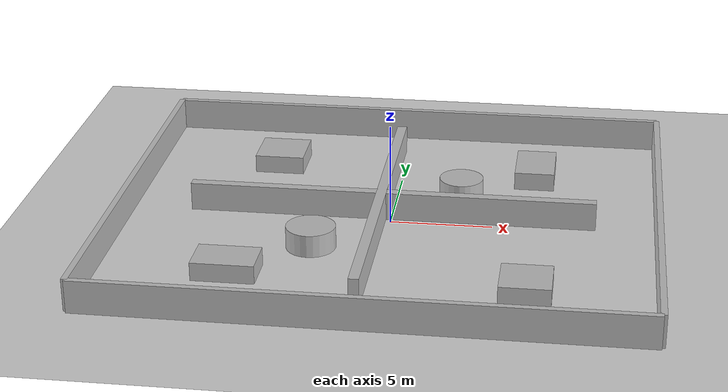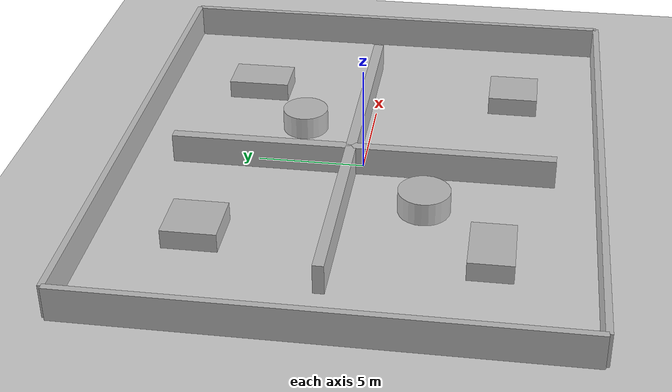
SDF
<?xml version="1.0" ?>
<sdf version="1.6">
  <world name="island_crossroads">
    <include><uri>model://ground_plane</uri></include>
    <include><uri>model://sun</uri></include>

    <model name="perimeter_and_cross">
      <static>true</static>
      <link name="pc">
        <collision name="pn"><pose>0 11 0.8 0 0 0</pose><geometry><box><size>26 0.3 1.6</size></box></geometry></collision>
        <collision name="ps"><pose>0 -11 0.8 0 0 0</pose><geometry><box><size>26 0.3 1.6</size></box></geometry></collision>
        <collision name="pe"><pose>13 0 0.8 0 0 0</pose><geometry><box><size>0.3 22 1.6</size></box></geometry></collision>
        <collision name="pw"><pose>-13 0 0.8 0 0 0</pose><geometry><box><size>0.3 22 1.6</size></box></geometry></collision>

        <collision name="cross_h"><pose>0 0.5 0.7 0 0 0</pose><geometry><box><size>20 0.5 1.4</size></box></geometry></collision>
        <collision name="cross_v"><pose>-0.5 0 0.7 0 0 0</pose><geometry><box><size>0.5 18 1.4</size></box></geometry></collision>

        <visual name="pnv"><pose>0 11 0.8 0 0 0</pose><geometry><box><size>26 0.3 1.6</size></box></geometry></visual>
        <visual name="psv"><pose>0 -11 0.8 0 0 0</pose><geometry><box><size>26 0.3 1.6</size></box></geometry></visual>
        <visual name="pev"><pose>13 0 0.8 0 0 0</pose><geometry><box><size>0.3 22 1.6</size></box></geometry></visual>
        <visual name="pwv"><pose>-13 0 0.8 0 0 0</pose><geometry><box><size>0.3 22 1.6</size></box></geometry></visual>
        <visual name="cross_h_v"><pose>0 0.5 0.7 0 0 0</pose><geometry><box><size>20 0.5 1.4</size></box></geometry></visual>
        <visual name="cross_v_v"><pose>-0.5 0 0.7 0 0 0</pose><geometry><box><size>0.5 18 1.4</size></box></geometry></visual>
      </link>
    </model>

    <model name="islands">
      <static>true</static>
      <link name="island_link">
        <collision name="i1"><pose>-6.5 6.5 0.45 0 0 0</pose><geometry><box><size>2.5 2.5 0.9</size></box></geometry></collision>
        <collision name="i2"><pose>6.8 6.2 0.45 0 0 0</pose><geometry><box><size>2.0 3.0 0.9</size></box></geometry></collision>
        <collision name="i3"><pose>-6.8 -6.4 0.45 0 0 0</pose><geometry><box><size>3.0 2.0 0.9</size></box></geometry></collision>
        <collision name="i4"><pose>7.0 -6.8 0.45 0 0 0</pose><geometry><box><size>2.4 2.4 0.9</size></box></geometry></collision>
        <collision name="i5"><pose>3.2 3.3 0.55 0 0 0</pose><geometry><cylinder><radius>1.1</radius><length>1.1</length></cylinder></geometry></collision>
        <collision name="i6"><pose>-3.4 -3.2 0.55 0 0 0</pose><geometry><cylinder><radius>1.2</radius><length>1.1</length></cylinder></geometry></collision>

        <visual name="i1v"><pose>-6.5 6.5 0.45 0 0 0</pose><geometry><box><size>2.5 2.5 0.9</size></box></geometry></visual>
        <visual name="i2v"><pose>6.8 6.2 0.45 0 0 0</pose><geometry><box><size>2.0 3.0 0.9</size></box></geometry></visual>
        <visual name="i3v"><pose>-6.8 -6.4 0.45 0 0 0</pose><geometry><box><size>3.0 2.0 0.9</size></box></geometry></visual>
        <visual name="i4v"><pose>7.0 -6.8 0.45 0 0 0</pose><geometry><box><size>2.4 2.4 0.9</size></box></geometry></visual>
        <visual name="i5v"><pose>3.2 3.3 0.55 0 0 0</pose><geometry><cylinder><radius>1.1</radius><length>1.1</length></cylinder></geometry></visual>
        <visual name="i6v"><pose>-3.4 -3.2 0.55 0 0 0</pose><geometry><cylinder><radius>1.2</radius><length>1.1</length></cylinder></geometry></visual>
      </link>
    </model>
  </world>
</sdf>
